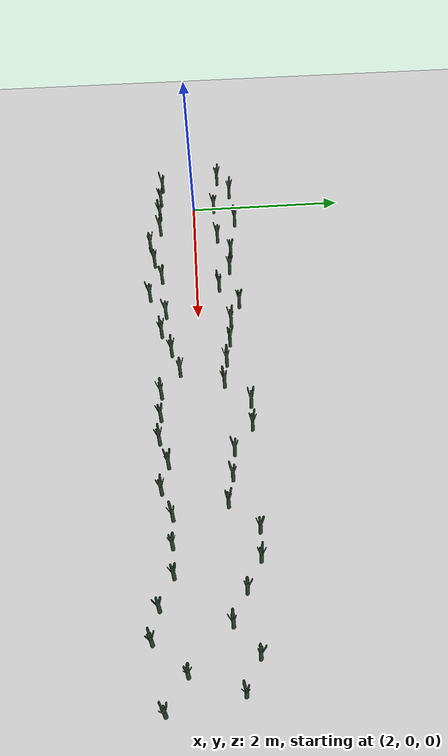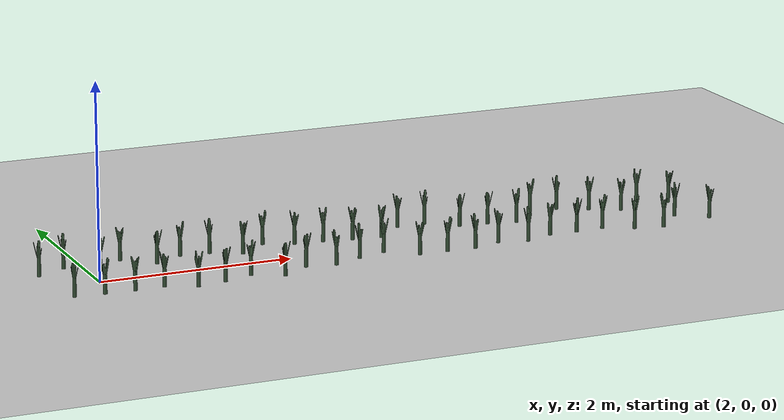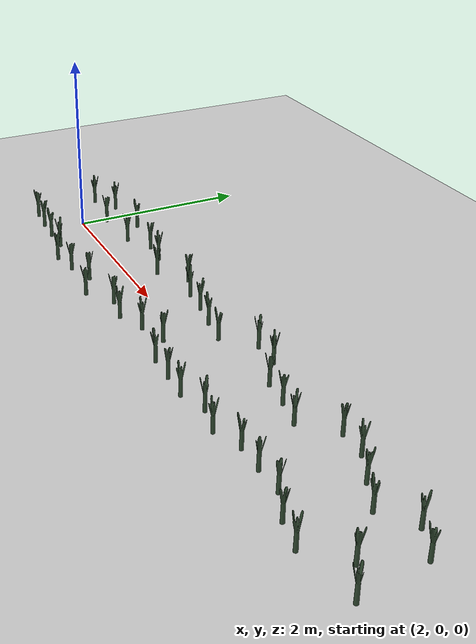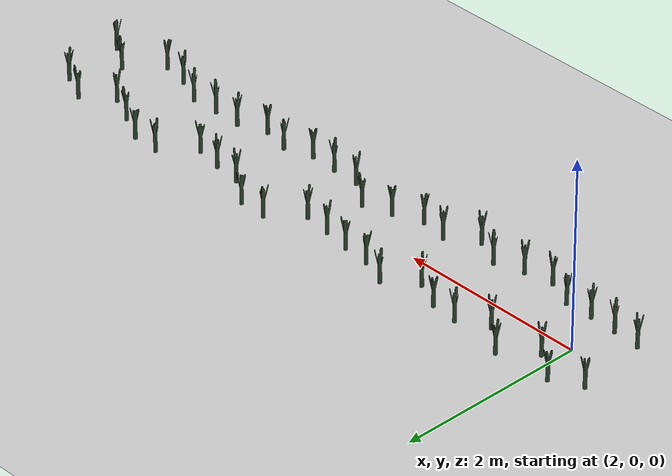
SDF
<sdf version="1.6">
 <world name="default">
  <light name="sun" type="directional">
   <pose>0 0 10 0 -0 0</pose>
   <diffuse>0.5 0.5 0.5 1</diffuse>
   <specular>0.1 0.1 0.1 1</specular>
   <attenuation>
    <range>1000</range>
    <constant>0.9</constant>
    <linear>0.01</linear>
    <quadratic>0.001</quadratic>
   </attenuation>
   <direction>0.9 0.5 -1</direction>
  </light>
  <scene><background>130 200 255 1</background><ambient>130 140 140 1</ambient></scene>
  <include><uri>model://dirt_plane</uri></include>
  <include>
   <uri>model://Leek</uri>
   <pose>1.500000 0.349049 0.15 0 0 -111.910522</pose>
   <static>0</static>
  </include>
  <include><uri>model://Leek</uri><pose>1.800000 0.507651 0.15 0 0 13.823128</pose><static>0</static></include>
  <include><uri>model://Leek</uri><pose>2.100000 0.278203 0.15 0 0 -20.507122</pose><static>0</static></include>
  <include><uri>model://Leek</uri><pose>2.400000 0.550359 0.15 0 0 85.164781</pose><static>0</static></include>
  <include><uri>model://Leek</uri><pose>2.700000 0.301976 0.15 0 0 -1.858027</pose><static>0</static></include>
  <include><uri>model://Leek</uri><pose>3.000000 0.462542 0.15 0 0 99.448760</pose><static>0</static></include>
  <include><uri>model://Leek</uri><pose>3.300000 0.431621 0.15 0 0 -42.729944</pose><static>0</static></include>
  <include><uri>model://Leek</uri><pose>3.600000 0.283447 0.15 0 0 91.746002</pose><static>0</static></include>
  <include><uri>model://Leek</uri><pose>3.900000 0.516612 0.15 0 0 -76.466231</pose><static>0</static></include>
  <include>
   <uri>model://Leek</uri>
   <pose>4.200000 0.397747 0.15 0 0 -160.669301</pose>
   <static>0</static>
  </include>
  <include><uri>model://Leek</uri><pose>4.500000 0.367679 0.15 0 0 -49.773424</pose><static>0</static></include>
  <include><uri>model://Leek</uri><pose>4.800000 0.314988 0.15 0 0 -34.572922</pose><static>0</static></include>
  <include>
   <uri>model://Leek</uri>
   <pose>5.100000 0.272094 0.15 0 0 -109.522829</pose>
   <static>0</static>
  </include>
  <include><uri>model://Leek</uri><pose>5.400000 0.552178 0.15 0 0 8.732027</pose><static>0</static></include>
  <include><uri>model://Leek</uri><pose>5.700000 0.544252 0.15 0 0 101.530356</pose><static>0</static></include>
  <include><uri>model://Leek</uri><pose>6.000000 0.332461 0.15 0 0 35.705257</pose><static>0</static></include>
  <include>
   <uri>model://Leek</uri>
   <pose>6.300000 0.297007 0.15 0 0 -109.030468</pose>
   <static>0</static>
  </include>
  <include><uri>model://Leek</uri><pose>6.600000 0.233940 0.15 0 0 170.325756</pose><static>0</static></include>
  <include><uri>model://Leek</uri><pose>6.900000 0.529742 0.15 0 0 -82.880988</pose><static>0</static></include>
  <include><uri>model://Leek</uri><pose>7.200000 0.514129 0.15 0 0 145.688286</pose><static>0</static></include>
  <include><uri>model://Leek</uri><pose>7.500000 0.359019 0.15 0 0 100.383625</pose><static>0</static></include>
  <include><uri>model://Leek</uri><pose>7.800000 0.210993 0.15 0 0 -65.975499</pose><static>0</static></include>
  <include><uri>model://Leek</uri><pose>8.100000 0.436188 0.15 0 0 6.302197</pose><static>0</static></include>
  <include><uri>model://Leek</uri><pose>8.400000 0.287659 0.15 0 0 3.656468</pose><static>0</static></include>
  <include>
   <uri>model://Leek</uri>
   <pose>1.604971 -0.422004 0.15 0 0 -178.101282</pose>
   <static>0</static>
  </include>
  <include><uri>model://Leek</uri><pose>1.904971 -0.444990 0.15 0 0 17.874368</pose><static>0</static></include>
  <include><uri>model://Leek</uri><pose>2.204971 -0.457075 0.15 0 0 41.261101</pose><static>0</static></include>
  <include><uri>model://Leek</uri><pose>2.504971 -0.451825 0.15 0 0 65.380092</pose><static>0</static></include>
  <include>
   <uri>model://Leek</uri>
   <pose>2.804971 -0.582425 0.15 0 0 -169.526771</pose>
   <static>0</static>
  </include>
  <include>
   <uri>model://Leek</uri>
   <pose>3.104971 -0.526026 0.15 0 0 123.948710</pose>
   <static>0</static>
  </include>
  <include><uri>model://Leek</uri><pose>3.404971 -0.430890 0.15 0 0 30.664239</pose><static>0</static></include>
  <include><uri>model://Leek</uri><pose>3.704971 -0.579806 0.15 0 0 60.947356</pose><static>0</static></include>
  <include>
   <uri>model://Leek</uri>
   <pose>4.004971 -0.383640 0.15 0 0 105.074947</pose>
   <static>0</static>
  </include>
  <include>
   <uri>model://Leek</uri>
   <pose>4.304971 -0.437174 0.15 0 0 108.565766</pose>
   <static>0</static>
  </include>
  <include>
   <uri>model://Leek</uri>
   <pose>4.604971 -0.320503 0.15 0 0 -143.099457</pose>
   <static>0</static>
  </include>
  <include><uri>model://Leek</uri><pose>4.904971 -0.226468 0.15 0 0 43.825248</pose><static>0</static></include>
  <include>
   <uri>model://Leek</uri>
   <pose>5.204971 -0.439213 0.15 0 0 116.217122</pose>
   <static>0</static>
  </include>
  <include>
   <uri>model://Leek</uri>
   <pose>5.504971 -0.446151 0.15 0 0 -120.352873</pose>
   <static>0</static>
  </include>
  <include>
   <uri>model://Leek</uri>
   <pose>5.804971 -0.460166 0.15 0 0 127.160073</pose>
   <static>0</static>
  </include>
  <include>
   <uri>model://Leek</uri>
   <pose>6.104971 -0.365930 0.15 0 0 -66.763038</pose>
   <static>0</static>
  </include>
  <include>
   <uri>model://Leek</uri>
   <pose>6.404971 -0.439989 0.15 0 0 -36.335137</pose>
   <static>0</static>
  </include>
  <include>
   <uri>model://Leek</uri>
   <pose>6.704971 -0.327606 0.15 0 0 -115.772929</pose>
   <static>0</static>
  </include>
  <include>
   <uri>model://Leek</uri>
   <pose>7.004971 -0.332388 0.15 0 0 137.594842</pose>
   <static>0</static>
  </include>
  <include>
   <uri>model://Leek</uri>
   <pose>7.304971 -0.322610 0.15 0 0 -70.047767</pose>
   <static>0</static>
  </include>
  <include>
   <uri>model://Leek</uri>
   <pose>7.604971 -0.460695 0.15 0 0 -158.247873</pose>
   <static>0</static>
  </include>
  <include><uri>model://Leek</uri><pose>7.904971 -0.524870 0.15 0 0 33.197085</pose><static>0</static></include>
  <include>
   <uri>model://Leek</uri>
   <pose>8.204971 -0.208118 0.15 0 0 -119.793053</pose>
   <static>0</static>
  </include>
  <include><uri>model://Leek</uri><pose>8.504971 -0.407696 0.15 0 0 33.593472</pose><static>0</static></include>
 </world>
</sdf>

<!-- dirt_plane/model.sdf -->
<sdf version="1.4">
<model name="dirt_plane">
  <static>true</static>
    <link name="link">
      <collision name="collision">
        <geometry>
          <plane>
            <normal>0 0 1</normal>
            <size>100 100</size>
          </plane>
        </geometry>
        <surface>
          <friction>
            <ode>
              <mu>100</mu>
              <mu2>50</mu2>
            </ode>
          </friction>
        </surface>
      </collision>
      <visual name="visual">
        <cast_shadows>false</cast_shadows>
        <geometry>
          <plane>
            <normal>0 0 1</normal>
            <size>100 100</size>
          </plane>
        </geometry>
        <material>
          <script>
            <uri>model://ground_plane/materials/scripts/my_ground_plane.material</uri>
            <uri>model://ground_plane/materials/textures</uri>
            <name>my_ground_plane/Dirt</name>
          </script>
        </material>
      </visual>
    </link>
  </model>
</sdf>

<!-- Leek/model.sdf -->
<sdf version='1.6'>
  <model name='Leek'>
    <link name='link'>
      <pose frame=''>0 0 0 0 -0 0</pose>
      <inertial>
        <mass>1</mass>
        <inertia>
          <ixx>0.145833</ixx>
          <ixy>0</ixy>
          <ixz>0</ixz>
          <iyy>0.145833</iyy>
          <iyz>0</iyz>
          <izz>0.125</izz>
        </inertia>
        <pose frame=''>0 0 0 0 -0 0</pose>
      </inertial>
      <self_collide>0</self_collide>
      <kinematic>0</kinematic>
      <gravity>1</gravity>
      <visual name='visual'>
        <geometry>
          <mesh>
            <uri>model://Leek/Poireau.dae</uri>
            <scale>1 1 1</scale>
          </mesh>
        </geometry>
        <material>
          <script>
            <name>Gazebo/Grey</name>
            <uri>file://media/materials/scripts/gazebo.material</uri>
          </script>
          <ambient>0.3 0.7 0.4 0</ambient>
          <diffuse>0.2 0.3 0.2 0</diffuse>
          <specular>0 0 0 1</specular>
          <emissive>0 0 0 1</emissive>
          <shader type='vertex'>
            <normal_map>__default__</normal_map>
          </shader>
        </material>
        <pose frame=''>0 0 -0.08 0 -0 0</pose>
        <cast_shadows>1</cast_shadows>
        <transparency>0</transparency>
      </visual>
      <collision name='collision'>
        <laser_retro>0</laser_retro>
        <max_contacts>10</max_contacts>
        <pose frame=''>0 0 0 0 -0 0</pose>
        <geometry>
          <cylinder>
            <radius>0.02</radius>
            <length>0.25</length>
          </cylinder>
        </geometry>
        <surface>
          <friction>
            <ode>
              <mu>1</mu>
              <mu2>1</mu2>
              <fdir1>0 0 0</fdir1>
              <slip1>0</slip1>
              <slip2>0</slip2>
            </ode>
            <torsional>
              <coefficient>1</coefficient>
              <patch_radius>0</patch_radius>
              <surface_radius>0</surface_radius>
              <use_patch_radius>1</use_patch_radius>
              <ode>
                <slip>0</slip>
              </ode>
            </torsional>
          </friction>
          <bounce>
            <restitution_coefficient>0</restitution_coefficient>
            <threshold>1e+06</threshold>
          </bounce>
          <contact>
            <collide_without_contact>0</collide_without_contact>
            <collide_without_contact_bitmask>1</collide_without_contact_bitmask>
            <collide_bitmask>1</collide_bitmask>
            <ode>
              <soft_cfm>0</soft_cfm>
              <soft_erp>0.2</soft_erp>
              <kp>1e+13</kp>
              <kd>1</kd>
              <max_vel>0.01</max_vel>
              <min_depth>0</min_depth>
            </ode>
            <bullet>
              <split_impulse>1</split_impulse>
              <split_impulse_penetration_threshold>-0.01</split_impulse_penetration_threshold>
              <soft_cfm>0</soft_cfm>
              <soft_erp>0.2</soft_erp>
              <kp>1e+13</kp>
              <kd>1</kd>
            </bullet>
          </contact>
        </surface>
      </collision>
    </link>
    <static>0</static>
    <allow_auto_disable>1</allow_auto_disable>
  </model>
</sdf>
